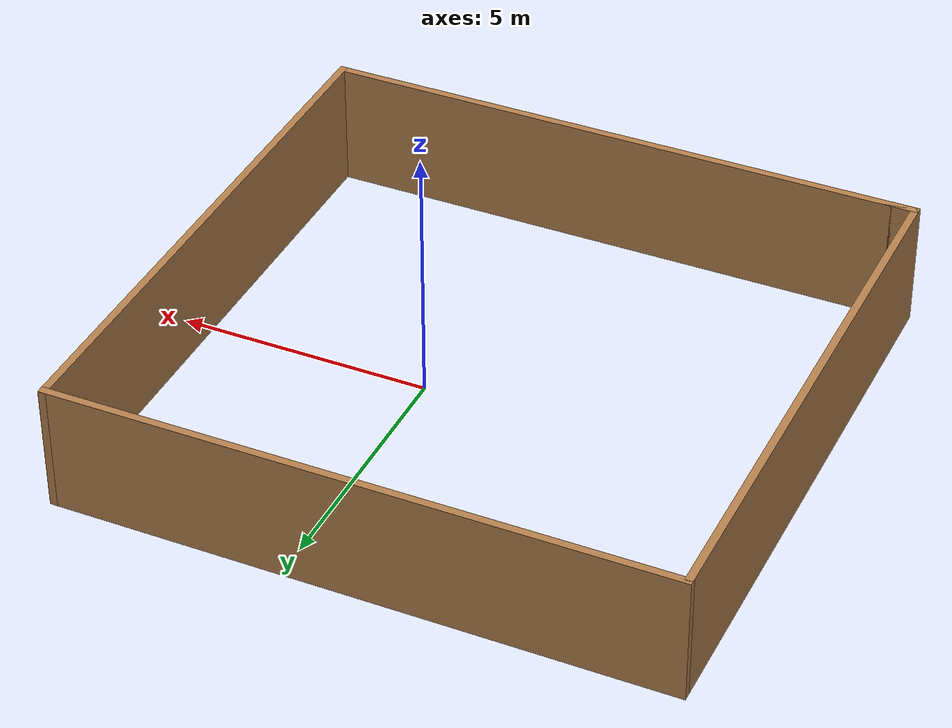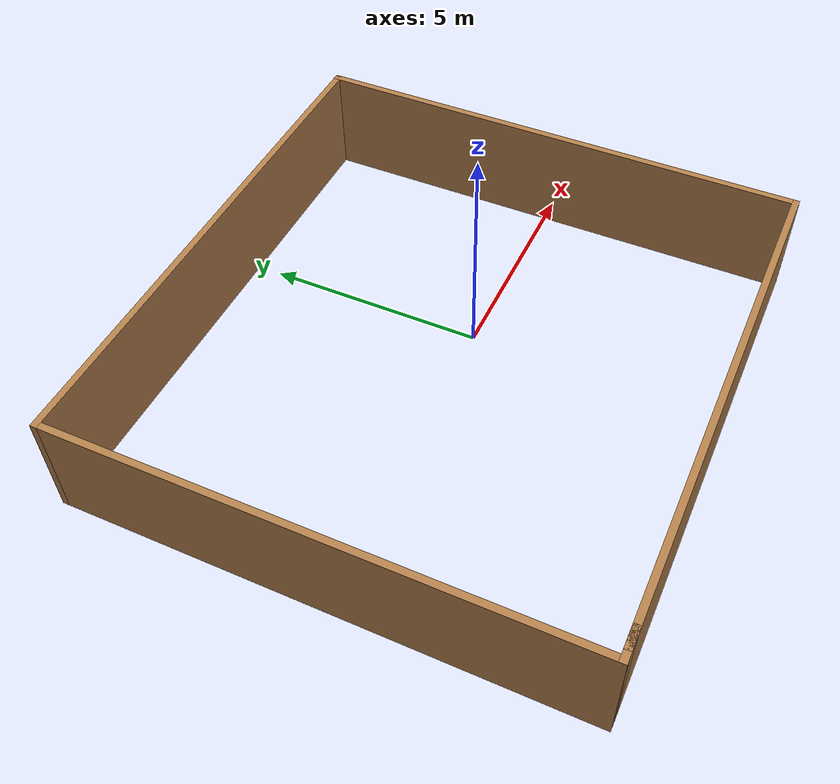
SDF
<?xml version='1.0'?>
<sdf version='1.7'>
  <model name='TD3_22'>
    <pose>-1.4375 -0.045403 0 0 -0 0</pose>
    <link name='Wall_3'>
      <collision name='Wall_3_Collision'>
        <geometry>
          <box>
            <size>11.75 0.15 2.5</size>
          </box>
        </geometry>
        <pose>0 0 1.25 0 -0 0</pose>
      </collision>
      <visual name='Wall_3_Visual'>
        <pose>0 0 1.25 0 -0 0</pose>
        <geometry>
          <box>
            <size>11.75 0.15 2.5</size>
          </box>
        </geometry>
        <material>
          <script>
            <uri>file://media/materials/scripts/gazebo.material</uri>
            <name>Gazebo/Wood</name>
          </script>
          <ambient>1 1 1 1</ambient>
        </material>
        <meta>
          <layer>0</layer>
        </meta>
      </visual>
      <pose>0.125 -5.675 0 0 -0 0</pose>
    </link>
    <link name='Wall_4'>
      <collision name='Wall_4_Collision'>
        <geometry>
          <box>
            <size>11.5 0.15 2.5</size>
          </box>
        </geometry>
        <pose>0 0 1.25 0 -0 0</pose>
      </collision>
      <visual name='Wall_4_Visual'>
        <pose>0 0 1.25 0 -0 0</pose>
        <geometry>
          <box>
            <size>11.5 0.15 2.5</size>
          </box>
        </geometry>
        <material>
          <script>
            <uri>file://media/materials/scripts/gazebo.material</uri>
            <name>Gazebo/Wood</name>
          </script>
          <ambient>1 1 1 1</ambient>
        </material>
        <meta>
          <layer>0</layer>
        </meta>
      </visual>
      <pose>5.925 -0 0 0 -0 1.5708</pose>
    </link>
    <link name='Wall_5'>
      <collision name='Wall_5_Collision'>
        <geometry>
          <box>
            <size>12 0.15 2.5</size>
          </box>
        </geometry>
        <pose>0 0 1.25 0 -0 0</pose>
      </collision>
      <visual name='Wall_5_Visual'>
        <pose>0 0 1.25 0 -0 0</pose>
        <geometry>
          <box>
            <size>12 0.15 2.5</size>
          </box>
        </geometry>
        <material>
          <script>
            <uri>file://media/materials/scripts/gazebo.material</uri>
            <name>Gazebo/Wood</name>
          </script>
          <ambient>1 1 1 1</ambient>
        </material>
        <meta>
          <layer>0</layer>
        </meta>
      </visual>
      <pose>0 5.675 0 0 -0 3.14159</pose>
    </link>
    <link name='Wall_6'>
      <collision name='Wall_6_Collision'>
        <geometry>
          <box>
            <size>11.5 0.15 2.5</size>
          </box>
        </geometry>
        <pose>0 0 1.25 0 -0 0</pose>
      </collision>
      <visual name='Wall_6_Visual'>
        <pose>0 0 1.25 0 -0 0</pose>
        <geometry>
          <box>
            <size>11.5 0.15 2.5</size>
          </box>
        </geometry>
        <material>
          <script>
            <uri>file://media/materials/scripts/gazebo.material</uri>
            <name>Gazebo/Wood</name>
          </script>
          <ambient>1 1 1 1</ambient>
        </material>
        <meta>
          <layer>0</layer>
        </meta>
      </visual>
      <pose>-5.925 -0 0 0 -0 -1.5708</pose>
    </link>
    <link name='Wall_7'>
      <collision name='Wall_7_Collision'>
        <geometry>
          <box>
            <size>0.75 0.15 2.5</size>
          </box>
        </geometry>
        <pose>0 0 1.25 0 -0 0</pose>
      </collision>
      <visual name='Wall_7_Visual'>
        <pose>0 0 1.25 0 -0 0</pose>
        <geometry>
          <box>
            <size>0.75 0.15 2.5</size>
          </box>
        </geometry>
        <material>
          <script>
            <uri>file://media/materials/scripts/gazebo.material</uri>
            <name>Gazebo/Wood</name>
          </script>
          <ambient>1 1 1 1</ambient>
        </material>
        <meta>
          <layer>0</layer>
        </meta>
      </visual>
      <pose>-5.625 -5.675 0 0 -0 0</pose>
    </link>
    <static>1</static>
  </model>
</sdf>
